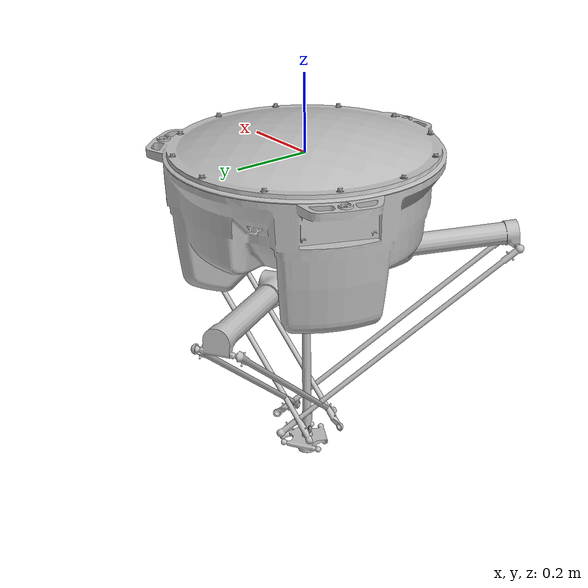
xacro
<?xml version="1.0"?>
<robot xmlns:xacro="http://www.ros.org/wiki/xacro" name="irb360">
    <xacro:arg name="initial_positions_file" default="initial_positions.yaml" />

    <!-- Import irb360 urdf file -->
    <xacro:include filename="$(find irb360)/urdf/irb360.urdf" />

    <!-- Import control_xacro -->
    <xacro:include filename="irb360.ros2_control.xacro" />

    <xacro:irb360_ros2_control name="FakeSystem" initial_positions_file="$(arg initial_positions_file)"/>

</robot>

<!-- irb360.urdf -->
<!-- |    This document was autogenerated by xacro from irb360.xacro                   | -->
<!-- |    EDITING THIS FILE BY HAND IS NOT RECOMMENDED                                 | -->
<robot name="abb_irb360">
  <!-- link list -->
  <link name="base_link">
    <inertial>
      <origin rpy="0 0 0" xyz="-0.000303780012679435 -3.71074928174513E-05 -0.156335278634856"/>
      <mass value="61.9547519471664"/>
      <inertia ixx="1.82767926132314" ixy="-0.00176633362838155" ixz="0.000242512658554882" iyy="1.82756729994537" iyz="-0.000210784916645732" izz="3.28584242183912"/>
    </inertial>
    <visual>
      <origin rpy="0 0 0" xyz="0 0 0"/>
      <geometry>
        <mesh filename="package://irb360/meshes/visual/base_link.STL"/>
      </geometry>
      <material name="">
        <color rgba="0.752941176470588 0.752941176470588 0.752941176470588 1"/>
      </material>
    </visual>
    <collision>
      <origin rpy="0 0 0" xyz="0 0 0"/>
      <geometry>
        <mesh filename="package://irb360/meshes/visual/base_link.STL"/>
      </geometry>
    </collision>
  </link>
  <!-- ROS-Industrial ABB RobotStudio zero position fix -->
  <link name="Link_fix_Axis1"/>
  <link name="Link_fix_Axis2"/>
  <link name="Link_fix_Axis3"/>
  <link name="Link_fix_Axis4"/>
  <link name="Link_Axis1">
    <inertial>
      <origin rpy="0 0 0" xyz="0.144255419365142 0.00949108904916839 0.010816437161317"/>
      <mass value="1.39734160687879"/>
      <inertia ixx="0.000814475609063002" ixy="1.56595367720714E-05" ixz="-0.00046600655267779" iyy="0.00679319603432314" iyz="1.21084606518063E-06" izz="0.00681961484233473"/>
    </inertial>
    <visual>
      <origin rpy="0 0 0" xyz="0 0 0"/>
      <geometry>
        <mesh filename="package://irb360/meshes/visual/Link_Axis1.STL"/>
      </geometry>
      <material name="">
        <color rgba="0.752941176470588 0.752941176470588 0.752941176470588 1"/>
      </material>
    </visual>
    <collision>
      <origin rpy="0 0 0" xyz="0 0 0"/>
      <geometry>
        <mesh filename="package://irb360/meshes/visual/Link_Axis1.STL"/>
      </geometry>
    </collision>
  </link>
  <link name="Link_Axis1_1_1"/>
  <link name="Link_Axis1_1_2"/>
  <link name="Link_Axis1_1_3">
    <inertial>
      <origin rpy="0 0 0" xyz="-0.252441465973729 -0.00477249783307858 -0.310242810313194"/>
      <mass value="0.136500570719"/>
      <inertia ixx="0.00304668823142722" ixy="-3.59054612106447E-05" ixz="-0.00247543225331226" iyy="0.00506042186723846" iyz="-4.41288062387584E-05" izz="0.00201864512502998"/>
    </inertial>
    <visual>
      <origin rpy="0 0 0" xyz="0 0 0"/>
      <geometry>
        <mesh filename="package://irb360/meshes/visual/Link_Axis1_1.STL"/>
      </geometry>
      <material name="">
        <color rgba="0.752941176470588 0.752941176470588 0.752941176470588 1"/>
      </material>
    </visual>
    <collision>
      <origin rpy="0 0 0" xyz="0 0 0"/>
      <geometry>
        <mesh filename="package://irb360/meshes/visual/Link_Axis1_1.STL"/>
      </geometry>
    </collision>
  </link>
  <link name="Link_Axis1_2_1"/>
  <link name="Link_Axis1_2_2"/>
  <link name="Link_Axis1_2_3">
    <inertial>
      <origin rpy="0 0 0" xyz="-0.252442324283929 -0.00422750121127362 -0.310250022671996"/>
      <mass value="0.136500570806673"/>
      <inertia ixx="0.00304669115151461" ixy="-3.59054399772105E-05" ixz="-0.00247543164596985" iyy="0.00506042186777227" iyz="-4.41288204780545E-05" izz="0.00201864220149881"/>
    </inertial>
    <visual>
      <origin rpy="0 0 0" xyz="0 0 0"/>
      <geometry>
        <mesh filename="package://irb360/meshes/visual/Link_Axis1_2.STL"/>
      </geometry>
      <material name="">
        <color rgba="0.752941176470588 0.752941176470588 0.752941176470588 1"/>
      </material>
    </visual>
    <collision>
      <origin rpy="0 0 0" xyz="0 0 0"/>
      <geometry>
        <mesh filename="package://irb360/meshes/visual/Link_Axis1_2.STL"/>
      </geometry>
    </collision>
  </link>
  <link name="Link_Axis2">
    <inertial>
      <origin rpy="0 0 0" xyz="-0.0653350341027566 -0.124250286754555 0.0361925935990031"/>
      <mass value="1.39734117524422"/>
      <inertia ixx="0.00522735251235428" ixy="-0.00252892654833098" ixz="0.000755976389484916" iyy="0.00271127066570145" iyz="0.001232886760729" izz="0.00648861324617836"/>
    </inertial>
    <visual>
      <origin rpy="0 0 0" xyz="0 0 0"/>
      <geometry>
        <mesh filename="package://irb360/meshes/visual/Link_Axis2.STL"/>
      </geometry>
      <material name="">
        <color rgba="0.752941176470588 0.752941176470588 0.752941176470588 1"/>
      </material>
    </visual>
    <collision>
      <origin rpy="0 0 0" xyz="0 0 0"/>
      <geometry>
        <mesh filename="package://irb360/meshes/visual/Link_Axis2.STL"/>
      </geometry>
    </collision>
  </link>
  <link name="Link_Axis2_1_1"/>
  <link name="Link_Axis2_1_2"/>
  <link name="Link_Axis2_1_3">
    <inertial>
      <origin rpy="0 0 0" xyz="0.123164196335967 0.217064783189601 -0.312591918393584"/>
      <mass value="0.136500649604261"/>
      <inertia ixx="0.0045797122136739" ixy="-0.000846178727435319" ixz="0.0012192153591946" iyy="0.00357353963322045" iyz="0.00214328972314806" izz="0.00197250341278118"/>
    </inertial>
    <visual>
      <origin rpy="0 0 0" xyz="0 0 0"/>
      <geometry>
        <mesh filename="package://irb360/meshes/visual/Link_Axis2_1.STL"/>
      </geometry>
      <material name="">
        <color rgba="0.752941176470588 0.752941176470588 0.752941176470588 1"/>
      </material>
    </visual>
    <collision>
      <origin rpy="0 0 0" xyz="0 0 0"/>
      <geometry>
        <mesh filename="package://irb360/meshes/visual/Link_Axis2_1.STL"/>
      </geometry>
    </collision>
  </link>
  <link name="Link_Axis2_2_1"/>
  <link name="Link_Axis2_2_2"/>
  <link name="Link_Axis2_2_3">
    <inertial>
      <origin rpy="0 0 0" xyz="0.12364025926514 0.216798368522092 -0.312588314651836"/>
      <mass value="0.136500658852826"/>
      <inertia ixx="0.00457970760233354" ixy="-0.000846182790309176" ixz="0.00121922030130266" iyy="0.00357353963555911" iyz="0.00214328812233074" izz="0.00197250804355331"/>
    </inertial>
    <visual>
      <origin rpy="0 0 0" xyz="0 0 0"/>
      <geometry>
        <mesh filename="package://irb360/meshes/visual/Link_Axis2_2.STL"/>
      </geometry>
      <material name="">
        <color rgba="0.752941176470588 0.752941176470588 0.752941176470588 1"/>
      </material>
    </visual>
    <collision>
      <origin rpy="0 0 0" xyz="0 0 0"/>
      <geometry>
        <mesh filename="package://irb360/meshes/visual/Link_Axis2_2.STL"/>
      </geometry>
    </collision>
  </link>
  <link name="Link_Axis3">
    <inertial>
      <origin rpy="0 0 0" xyz="-0.0816665594626892 0.114759186191428 0.0343160630945188"/>
      <mass value="1.39734185379635"/>
      <inertia ixx="0.00525483397353537" ixy="0.00251459964980353" ixz="0.000750904929794468" iyy="0.00268534966772001" iyz="-0.00123931326276788" izz="0.0064871078059897"/>
    </inertial>
    <visual>
      <origin rpy="0 0 0" xyz="0 0 0"/>
      <geometry>
        <mesh filename="package://irb360/meshes/visual/Link_Axis3.STL"/>
      </geometry>
      <material name="">
        <color rgba="0.752941176470588 0.752941176470588 0.752941176470588 1"/>
      </material>
    </visual>
    <collision>
      <origin rpy="0 0 0" xyz="0 0 0"/>
      <geometry>
        <mesh filename="package://irb360/meshes/visual/Link_Axis3.STL"/>
      </geometry>
    </collision>
  </link>
  <link name="Link_Axis3_1_1"/>
  <link name="Link_Axis3_1_2"/>
  <link name="Link_Axis3_1_3">
    <inertial>
      <origin rpy="0 0 0" xyz="0.128405710830037 -0.21229314021824 -0.31375707709026"/>
      <mass value="0.136500646683187"/>
      <inertia ixx="0.0045417882461785" ixy="0.000860649821330782" ixz="0.0012710709315975" iyy="0.00363461155212516" iyz="-0.0021066801754962" izz="0.00194935545717444"/>
    </inertial>
    <visual>
      <origin rpy="0 0 0" xyz="0 0 0"/>
      <geometry>
        <mesh filename="package://irb360/meshes/visual/Link_Axis3_1.STL"/>
      </geometry>
      <material name="">
        <color rgba="0.752941176470588 0.752941176470588 0.752941176470588 1"/>
      </material>
    </visual>
    <collision>
      <origin rpy="0 0 0" xyz="0 0 0"/>
      <geometry>
        <mesh filename="package://irb360/meshes/visual/Link_Axis3_1.STL"/>
      </geometry>
    </collision>
  </link>
  <link name="Link_Axis3_2_1"/>
  <link name="Link_Axis3_2_2"/>
  <link name="Link_Axis3_2_3">
    <inertial>
      <origin rpy="0 0 0" xyz="0.127936260397935 -0.212570008079634 -0.313761921759684"/>
      <mass value="0.136500656635308"/>
      <inertia ixx="0.00454178824723768" ixy="0.000860649819753029" ixz="0.0012710709312438" iyy="0.00363461154196049" iyz="-0.002106680180426" izz="0.00194935545947885"/>
    </inertial>
    <visual>
      <origin rpy="0 0 0" xyz="0 0 0"/>
      <geometry>
        <mesh filename="package://irb360/meshes/visual/Link_Axis3_2.STL"/>
      </geometry>
      <material name="">
        <color rgba="0.752941176470588 0.752941176470588 0.752941176470588 1"/>
      </material>
    </visual>
    <collision>
      <origin rpy="0 0 0" xyz="0 0 0"/>
      <geometry>
        <mesh filename="package://irb360/meshes/visual/Link_Axis3_2.STL"/>
      </geometry>
    </collision>
  </link>
  <link name="Link_Axis4">
    <inertial>
      <origin rpy="0 0 0" xyz="9.3257985461457E-06 5.67210065847627E-06 -0.0493908262802903"/>
      <mass value="0.0223116041183814"/>
      <inertia ixx="1.21077458740538E-05" ixy="-3.67800662100836E-08" ixz="-2.40797604451512E-09" iyy="1.21554070497255E-05" iyz="-1.36624950152957E-09" izz="9.02219266048407E-07"/>
    </inertial>
    <visual>
      <origin rpy="0 0 0" xyz="0 0 0"/>
      <geometry>
        <mesh filename="package://irb360/meshes/visual/Link_Axis4_1.STL"/>
      </geometry>
      <material name="">
        <color rgba="0.752941176470588 0.752941176470588 0.752941176470588 1"/>
      </material>
    </visual>
    <collision>
      <origin rpy="0 0 0" xyz="0 0 0"/>
      <geometry>
        <mesh filename="package://irb360/meshes/visual/Link_Axis4_1.STL"/>
      </geometry>
    </collision>
  </link>
  <link name="Link_Axis4_2">
    <inertial>
      <origin rpy="0 0 0" xyz="-5.31163387215079E-10 9.49681703944246E-10 -2.41195952099815E-14"/>
      <mass value="0.0010889263141339"/>
      <inertia ixx="2.96701375421384E-08" ixy="-2.6566265658313E-22" ixz="-1.07697257018399E-12" iyy="2.96701374931256E-08" iyz="4.89011967649224E-18" izz="5.33348872993866E-08"/>
    </inertial>
    <visual>
      <origin rpy="0 0 0" xyz="0 0 0"/>
      <geometry>
        <mesh filename="package://irb360/meshes/visual/Link_Axis4_2.STL"/>
      </geometry>
      <material name="">
        <color rgba="0.501960784313725 0.501960784313725 0.250980392156863 1"/>
      </material>
    </visual>
    <collision>
      <origin rpy="0 0 0" xyz="0 0 0"/>
      <geometry>
        <mesh filename="package://irb360/meshes/visual/Link_Axis4_2.STL"/>
      </geometry>
    </collision>
  </link>
  <link name="Link_Axis4_3">
    <inertial>
      <origin rpy="0 0 0" xyz="4.77287182985873E-05 4.29943629081103E-06 -0.265978890024669"/>
      <mass value="0.0636123532085452"/>
      <inertia ixx="0.0014171124151755" ixy="4.30813188223102E-08" ixz="2.1541891941554E-07" iyy="0.00141705952054768" iyz="1.29449212356341E-09" izz="1.34442397992355E-06"/>
    </inertial>
    <visual>
      <origin rpy="0 0 0" xyz="0 0 0"/>
      <geometry>
        <mesh filename="package://irb360/meshes/visual/Link_Axis4_3.STL"/>
      </geometry>
      <material name="">
        <color rgba="0.752941176470588 0.752941176470588 0.752941176470588 1"/>
      </material>
    </visual>
    <collision>
      <origin rpy="0 0 0" xyz="0 0 0"/>
      <geometry>
        <mesh filename="package://irb360/meshes/visual/Link_Axis4_3.STL"/>
      </geometry>
    </collision>
  </link>
  <link name="Link_Axis4_4">
    <inertial>
      <origin rpy="0 0 0" xyz="1.15385241722202E-05 -2.30609064843535E-07 -0.274752338280936"/>
      <mass value="0.263475765303748"/>
      <inertia ixx="0.00599202163229709" ixy="3.23071879718428E-08" ixz="8.35045669006413E-07" iyy="0.00599198204216406" iyz="1.14395164182239E-07" izz="1.96511438706272E-05"/>
    </inertial>
    <visual>
      <origin rpy="0 0 0" xyz="0 0 0"/>
      <geometry>
        <mesh filename="package://irb360/meshes/visual/Link_Axis4_4.STL"/>
      </geometry>
      <material name="">
        <color rgba="0.752941176470588 0.752941176470588 0.752941176470588 1"/>
      </material>
    </visual>
    <collision>
      <origin rpy="0 0 0" xyz="0 0 0"/>
      <geometry>
        <mesh filename="package://irb360/meshes/visual/Link_Axis4_4.STL"/>
      </geometry>
    </collision>
  </link>
  <link name="Link_Axis4_5">
    <inertial>
      <origin rpy="0 0 0" xyz="-3.38906804841512E-11 2.28501245690699E-10 1.2747580768746E-12"/>
      <mass value="0.00108892631413387"/>
      <inertia ixx="2.96701375421374E-08" ixy="-2.1950655979108E-22" ixz="-1.07696941943708E-12" iyy="2.96701374931253E-08" iyz="4.89017205355486E-18" izz="5.33348872993867E-08"/>
    </inertial>
    <visual>
      <origin rpy="0 0 0" xyz="0 0 0"/>
      <geometry>
        <mesh filename="package://irb360/meshes/visual/Link_Axis4_5.STL"/>
      </geometry>
      <material name="">
        <color rgba="0.501960784313725 0.501960784313725 0.250980392156863 1"/>
      </material>
    </visual>
    <collision>
      <origin rpy="0 0 0" xyz="0 0 0"/>
      <geometry>
        <mesh filename="package://irb360/meshes/visual/Link_Axis4_5.STL"/>
      </geometry>
    </collision>
  </link>
  <link name="Link_Axis4_6">
    <inertial>
      <origin rpy="0 0 0" xyz="1.98088533512928E-05 8.55328149812147E-06 -0.0350125506059855"/>
      <mass value="0.0203923395921574"/>
      <inertia ixx="4.36183482216886E-06" ixy="-4.02541868207121E-08" ixz="1.1056913218743E-08" iyy="4.42008725995418E-06" iyz="1.41054416199335E-09" izz="1.75199237802778E-06"/>
    </inertial>
    <visual>
      <origin rpy="0 0 0" xyz="0 0 0"/>
      <geometry>
        <mesh filename="package://irb360/meshes/visual/Link_Axis4_6.STL"/>
      </geometry>
      <material name="">
        <color rgba="0.752941176470588 0.752941176470588 0.752941176470588 1"/>
      </material>
    </visual>
    <collision>
      <origin rpy="0 0 0" xyz="0 0 0"/>
      <geometry>
        <mesh filename="package://irb360/meshes/visual/Link_Axis4_6.STL"/>
      </geometry>
    </collision>
  </link>
  <link name="Link_Axis4_7">
    <inertial>
      <origin rpy="0 0 0" xyz="5.61621890788805E-05 3.26958054480375E-08 -0.0350171254897329"/>
      <mass value="0.165245050856708"/>
      <inertia ixx="7.27337400253683E-05" ixy="4.31741204390692E-10" ixz="-9.59329766785455E-08" iyy="7.32043056187117E-05" iyz="1.45322856106602E-11" izz="0.000136934152393261"/>
    </inertial>
    <visual>
      <origin rpy="0 0 0" xyz="0 0 0"/>
      <geometry>
        <mesh filename="package://irb360/meshes/visual/Link_Axis4_7.STL"/>
      </geometry>
      <material name="">
        <color rgba="0.752941176470588 0.752941176470588 0.752941176470588 1"/>
      </material>
    </visual>
    <collision>
      <origin rpy="0 0 0" xyz="0 0 0"/>
      <geometry>
        <mesh filename="package://irb360/meshes/visual/Link_Axis4_7.STL"/>
      </geometry>
    </collision>
  </link>
  <!-- end of link list -->
  <!--joint name="${prefix}joint_fix_Axis1" type="continuous"-->
  <joint name="joint_fix_Axis1" type="fixed">
    <!--origin xyz="0.2 0 -0.275" rpy="0 -0.22997 0" /-->
    <origin rpy=" 0 0.000413461 0" xyz="0.2 0 -0.275"/>
    <parent link="base_link"/>
    <child link="Link_fix_Axis1"/>
    <!--axis xyz="0 1 0" /-->
  </joint>
  <!--joint name="${prefix}joint_fix_Axis2" type="continuous"-->
  <joint name="joint_fix_Axis2" type="fixed">
    <!--origin xyz="-0.1 -0.17321 -0.275" rpy="0 0.1144 0" /-->
    <origin rpy="0.198758 -0.000598744 -0.0114783" xyz="-0.1 -0.17321 -0.275"/>
    <parent link="base_link"/>
    <child link="Link_fix_Axis2"/>
    <!--axis xyz="0.86036 -0.5 0" /-->
  </joint>
  <!--joint name="${prefix}joint_fix_Axis3" type="continuous"-->
  <joint name="joint_fix_Axis3" type="fixed">
    <!--origin xyz="-0.1 0.17321 -0.275" rpy="0 0.1144 0" /-->
    <origin rpy="-0.198758 -0.000598744 0.0114783" xyz="-0.1 0.17321 -0.275"/>
    <parent link="base_link"/>
    <child link="Link_fix_Axis3"/>
    <!--axis xyz="-0.86036 -0.5 0" /-->
  </joint>
  <joint name="joint_fix_Axis4" type="fixed">
    <origin rpy="0 0 0" xyz="0 0 0"/>
    <!--origin xyz="0 0 -0.102" rpy="0 0 0" /-->
    <parent link="base_link"/>
    <child link="Link_fix_Axis4"/>
  </joint>
  <!-- joint list -->
  <joint name="joint_1" type="revolute">
    <!--origin xyz="0.2 0 -0.275" rpy="0 -0.22997 0" /-->
    <origin rpy="0 0 0" xyz="0 0 0"/>
    <parent link="Link_fix_Axis1"/>
    <child link="Link_Axis1"/>
    <axis xyz="0 1 0"/>
    <!-- this data need to be fixed! FIXME-->
    <limit effort="1000" lower="-0.805" upper="1.745" velocity="5.027"/>
    <dynamics damping="50.0" friction="1.0"/>
  </joint>
  <joint name="joint_1_1_1" type="continuous">
    <origin rpy="0 0.21539 0" xyz="0.35 -0.041 0"/>
    <parent link="Link_Axis1"/>
    <child link="Link_Axis1_1_1"/>
    <axis xyz="0 1 0"/>
    <!--mimic joint="joint_4" multiplier="0" offset="0" /-->
  </joint>
  <joint name="joint_1_1_2" type="continuous">
    <parent link="Link_Axis1_1_1"/>
    <child link="Link_Axis1_1_2"/>
    <axis xyz="0 0 1"/>
    <!--mimic joint="joint_4" multiplier="0" offset="0" /-->
  </joint>
  <joint name="joint_1_1_3" type="continuous">
    <parent link="Link_Axis1_1_2"/>
    <child link="Link_Axis1_1_3"/>
    <axis xyz="0 1 0"/>
    <!--mimic joint="joint_4" multiplier="0" offset="0" /-->
  </joint>
  <joint name="joint_1_2_1" type="continuous">
    <origin rpy="0 0.21539 0" xyz="0.35 0.059 0"/>
    <parent link="Link_Axis1"/>
    <child link="Link_Axis1_2_1"/>
    <axis xyz="0 1 0"/>
    <!--mimic joint="joint_1_1_1" multiplier="1" offset="0" /-->
  </joint>
  <joint name="joint_1_2_2" type="continuous">
    <parent link="Link_Axis1_2_1"/>
    <child link="Link_Axis1_2_2"/>
    <axis xyz="0 0 1"/>
    <!--mimic joint="joint_1_1_2" multiplier="1" offset="0" /-->
  </joint>
  <joint name="joint_1_2_3" type="continuous">
    <parent link="Link_Axis1_2_2"/>
    <child link="Link_Axis1_2_3"/>
    <axis xyz="0 1 0"/>
    <!--mimic joint="joint_1_1_3" multiplier="1" offset="0" /-->
  </joint>
  <joint name="joint_2" type="revolute">
    <!-- origin xyz="-0.1 -0.17321 -0.275" rpy="0 0.1144 0" /-->
    <origin rpy="0 0 0" xyz="0 0 0"/>
    <parent link="Link_fix_Axis2"/>
    <child link="Link_Axis2"/>
    <axis xyz="0.86036 -0.5 0"/>
    <limit effort="1000" lower="-0.805" upper="1.745" velocity="5.027"/>
    <dynamics damping="50.0" friction="1.0"/>
  </joint>
  <joint name="joint_2_1_1" type="continuous">
    <origin rpy="0 -0.1037 0" xyz="-0.21366 -0.27463 0.055756"/>
    <parent link="Link_Axis2"/>
    <child link="Link_Axis2_1_1"/>
    <axis xyz="0.86036 -0.5 0"/>
    <!--mimic joint="joint_4" multiplier="0" offset="0" /-->
  </joint>
  <joint name="joint_2_1_2" type="continuous">
    <parent link="Link_Axis2_1_1"/>
    <child link="Link_Axis2_1_2"/>
    <axis xyz="0 0 1"/>
    <!--mimic joint="joint_4" multiplier="0" offset="0" /-->
  </joint>
  <joint name="joint_2_1_3" type="continuous">
    <parent link="Link_Axis2_1_2"/>
    <child link="Link_Axis2_1_3"/>
    <axis xyz="0.86036 -0.5 0"/>
    <!--mimic joint="joint_4" multiplier="0" offset="0" /-->
  </joint>
  <joint name="joint_2_2_1" type="continuous">
    <origin rpy="0 -0.10369 0" xyz="-0.12762 -0.32463 0.065642"/>
    <parent link="Link_Axis2"/>
    <child link="Link_Axis2_2_1"/>
    <axis xyz="0.86036 -0.5 0"/>
    <!--mimic joint="joint_2_1_1" multiplier="1" offset="0" /-->
  </joint>
  <joint name="joint_2_2_2" type="continuous">
    <parent link="Link_Axis2_2_1"/>
    <child link="Link_Axis2_2_2"/>
    <axis xyz="0 0 1"/>
    <!--mimic joint="joint_2_1_2" multiplier="1" offset="0" /-->
  </joint>
  <joint name="joint_2_2_3" type="continuous">
    <parent link="Link_Axis2_2_2"/>
    <child link="Link_Axis2_2_3"/>
    <axis xyz="0.86036 -0.5 0"/>
    <!--mimic joint="joint_2_1_3" multiplier="1" offset="0" /-->
  </joint>
  <joint name="joint_3" type="revolute">
    <!--origin xyz="-0.1 0.17321 -0.275" rpy="0 0.1144 0" /-->
    <origin rpy=" 0 0 0" xyz="0 0 0"/>
    <parent link="Link_fix_Axis3"/>
    <child link="Link_Axis3"/>
    <axis xyz="-0.86036 -0.5 0"/>
    <limit effort="1000" lower="-0.805" upper="1.745" velocity="5.027"/>
    <dynamics damping="50.0" friction="1.0"/>
  </joint>
  <joint name="joint_3_1_1" type="continuous">
    <origin rpy="0 -0.11336 0" xyz="-0.14311 0.31563 0.063862"/>
    <parent link="Link_Axis3"/>
    <child link="Link_Axis3_1_1"/>
    <axis xyz="-0.86036 -0.5 0"/>
    <!--mimic joint="joint_4" multiplier="0" offset="0" /-->
  </joint>
  <joint name="joint_3_1_2" type="continuous">
    <parent link="Link_Axis3_1_1"/>
    <child link="Link_Axis3_1_2"/>
    <axis xyz="0 0 1"/>
    <!--mimic joint="joint_4" multiplier="0" offset="0" /-->
  </joint>
  <joint name="joint_3_1_3" type="continuous">
    <parent link="Link_Axis3_1_2"/>
    <child link="Link_Axis3_1_3"/>
    <axis xyz="-0.86036 -0.5 0"/>
    <!--mimic joint="joint_4" multiplier="0" offset="0" /-->
  </joint>
  <joint name="joint_3_2_1" type="continuous">
    <origin rpy="0 -0.11336 0" xyz="-0.22915 0.26563 0.053977"/>
    <parent link="Link_Axis3"/>
    <child link="Link_Axis3_2_1"/>
    <axis xyz="-0.86036 -0.5 0"/>
    <!--mimic joint="joint_3_1_1" multiplier="1" offset="0" /-->
  </joint>
  <joint name="joint_3_2_2" type="continuous">
    <parent link="Link_Axis3_2_1"/>
    <child link="Link_Axis3_2_2"/>
    <axis xyz="0 0 1"/>
    <!--mimic joint="joint_3_1_2" multiplier="1" offset="0" /-->
  </joint>
  <joint name="joint_3_2_3" type="continuous">
    <parent link="Link_Axis3_2_2"/>
    <child link="Link_Axis3_2_3"/>
    <axis xyz="-0.86036 -0.5 0"/>
    <!--mimic joint="joint_3_1_3" multiplier="1" offset="0" /-->
  </joint>
  <joint name="joint_4" type="continuous">
    <!--origin xyz="0 0 -0.102" rpy="0 0 0" /-->
    <origin rpy="0 0 0" xyz="0 0 -0.103"/>
    <!--origin xyz="0 0 0" rpy="0 0 0" /-->
    <parent link="Link_fix_Axis4"/>
    <child link="Link_Axis4"/>
    <axis xyz="0 0 -1"/>
    <limit effort="1000" lower="0" upper="0" velocity="5.027"/>
    <dynamics damping="50.0" friction="1.0"/>
  </joint>
  <joint name="joint_4_2" type="continuous">
    <origin rpy="0 0 0" xyz="0 0 -0.11"/>
    <parent link="Link_Axis4"/>
    <child link="Link_Axis4_2"/>
    <axis xyz="0.87276 0.48814 0"/>
    <!--mimic joint="joint_4" multiplier="0" offset="0" /-->
  </joint>
  <joint name="joint_4_3" type="continuous">
    <origin rpy="0 0 0" xyz="0 0 0"/>
    <parent link="Link_Axis4_2"/>
    <child link="Link_Axis4_3"/>
    <axis xyz="0.48814 -0.87276 0"/>
    <!--mimic joint="joint_4" multiplier="0" offset="0" /-->
  </joint>
  <joint name="joint_4_4" type="prismatic">
    <origin rpy="0 0 0" xyz="0 0 -0.018501"/>
    <parent link="Link_Axis4_3"/>
    <child link="Link_Axis4_4"/>
    <axis xyz="0 0 -1"/>
    <limit effort="0" lower="-10" upper="10" velocity="0"/>
    <!-- mimic joint="joint_4" multiplier="0" offset="0" / -->
  </joint>
  <joint name="joint_4_5" type="continuous">
    <origin rpy="0 0 0" xyz="0 0 -0.563"/>
    <parent link="Link_Axis4_4"/>
    <child link="Link_Axis4_5"/>
    <axis xyz="-0.48818 0.87274 0"/>
    <!--mimic joint="joint_4_3" multiplier="1" offset="0" /-->
  </joint>
  <joint name="joint_4_6" type="continuous">
    <origin rpy="0 0 0" xyz="0 0 0"/>
    <parent link="Link_Axis4_5"/>
    <child link="Link_Axis4_6"/>
    <axis xyz="-0.87274 -0.48818 0"/>
    <!--mimic joint="joint_4_2" multiplier="1" offset="0" /-->
  </joint>
  <joint name="joint_4_7" type="continuous">
    <origin rpy="0 0 0" xyz="0 0 0"/>
    <parent link="Link_Axis4_6"/>
    <child link="Link_Axis4_7"/>
    <axis xyz="0 0 -1"/>
    <!--mimic joint="joint_4" multiplier="-1" offset="0" /-->
  </joint>
  <!-- end of joint list -->
  <!-- ROS-Industrial 'base' frame- base_link to ABB World Coordinates transform -->
  <!-- ROS-Industrial 'flange' frame- attachment point for EEF models -->
  <link name="flange"/>
  <joint name="Link_Axis4_7-flange" type="fixed">
    <origin rpy="0 0 0" xyz="0 0 0"/>
    <parent link="Link_Axis4_7"/>
    <child link="flange"/>
  </joint>
  <!-- ROS-Industrial 'tool0' frame- all-zeros tool frame -->
  <link name="tool0"/>
  <joint name="Link_Axis4_7-tool0" type="fixed">
    <!--origin xyz="0 0 0" rpy="0 ${radians(90)} 0" /-->
    <origin rpy="0 0 0" xyz="0 0 0"/>
    <parent link="flange"/>
    <child link="tool0"/>
  </joint>
  <ros2_control name="ABBMultiInterfaceHardware" type="system">
    <hardware>
      <plugin>mock_components/GenericSystem</plugin>
      <param name="fake_sensor_commands">false</param>
      <param name="state_following_offset">0.0</param>
    </hardware>
    <joint name="joint_1">
      <command_interface name="position">
        <!-- FIXME correct data -->
        <param name="min">-0.805</param>
        <param name="max">1.745</param>
      </command_interface>
      <command_interface name="velocity"/>
      <state_interface name="position">
        <param name="initial_value">0</param>
      </state_interface>
      <state_interface name="velocity"/>
    </joint>
    <joint name="joint_2">
      <command_interface name="position">
        <param name="min">-0.805</param>
        <param name="max">1.745</param>
      </command_interface>
      <command_interface name="velocity"/>
      <state_interface name="position">
        <param name="initial_value">0</param>
      </state_interface>
      <state_interface name="velocity"/>
    </joint>
    <joint name="joint_3">
      <command_interface name="position">
        <param name="min">-0.805</param>
        <param name="max">1.745</param>
      </command_interface>
      <command_interface name="velocity"/>
      <state_interface name="position">
        <param name="initial_value">0</param>
      </state_interface>
      <state_interface name="velocity"/>
    </joint>
    <joint name="joint_4">
      <command_interface name="position">
        </command_interface>
      <command_interface name="velocity"/>
      <state_interface name="position">
        <param name="initial_value">0.0</param>
      </state_interface>
      <state_interface name="velocity"/>
    </joint>
  </ros2_control>
</robot>
